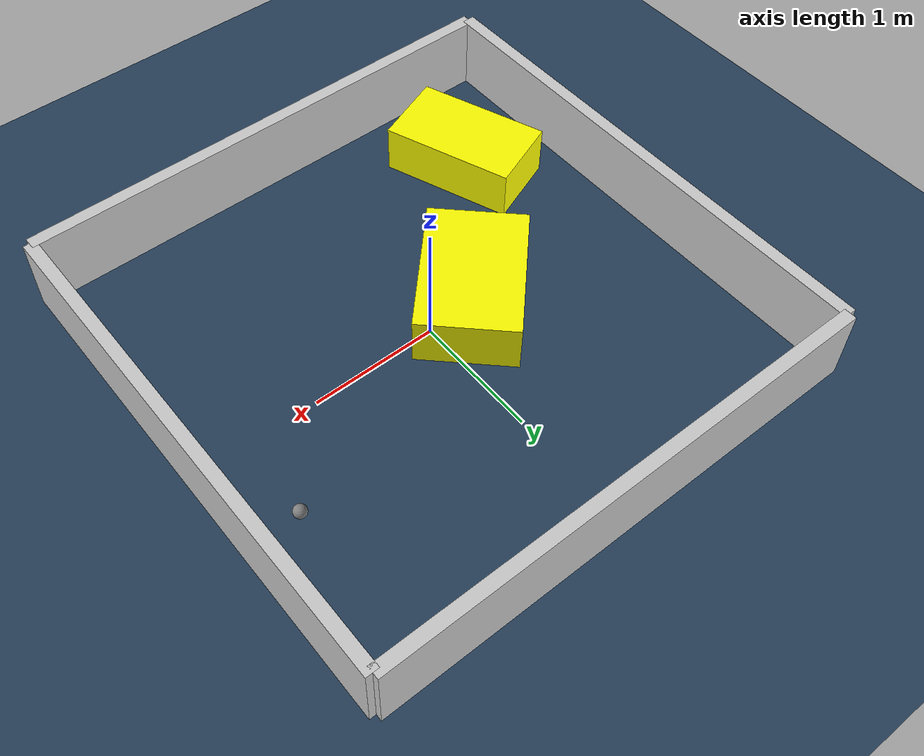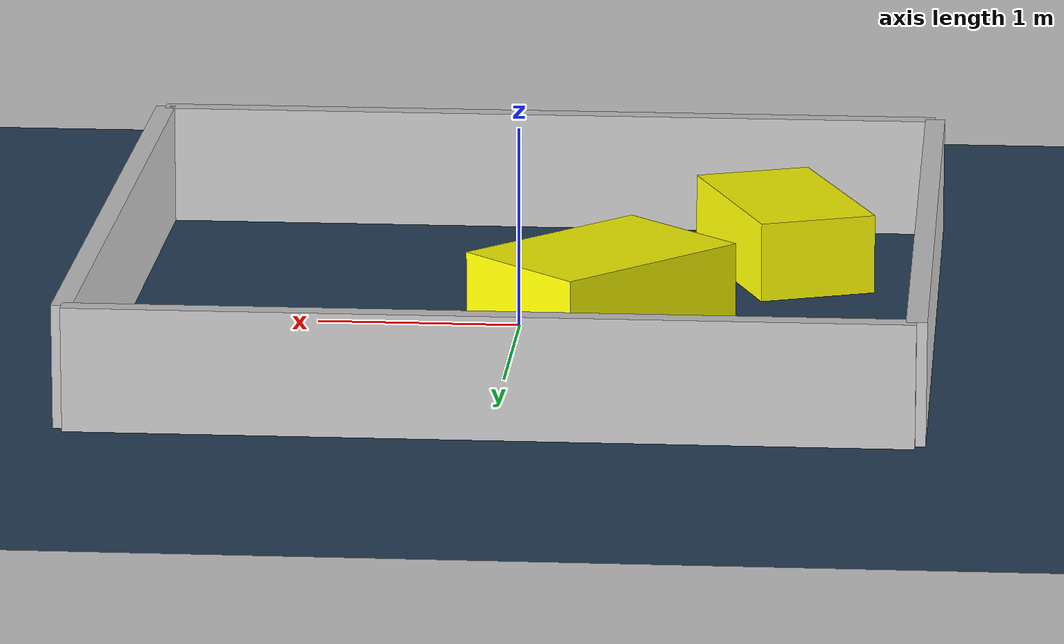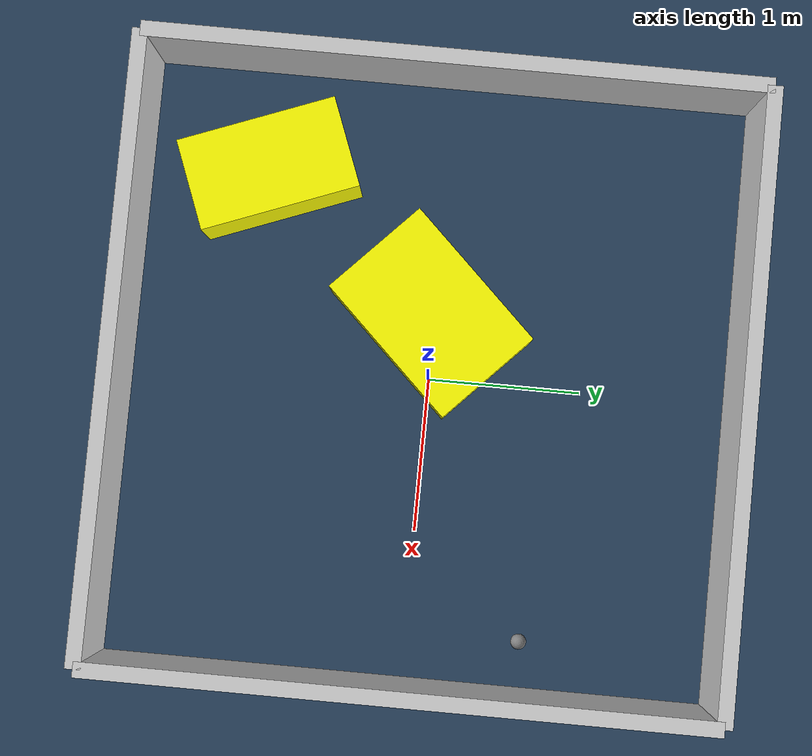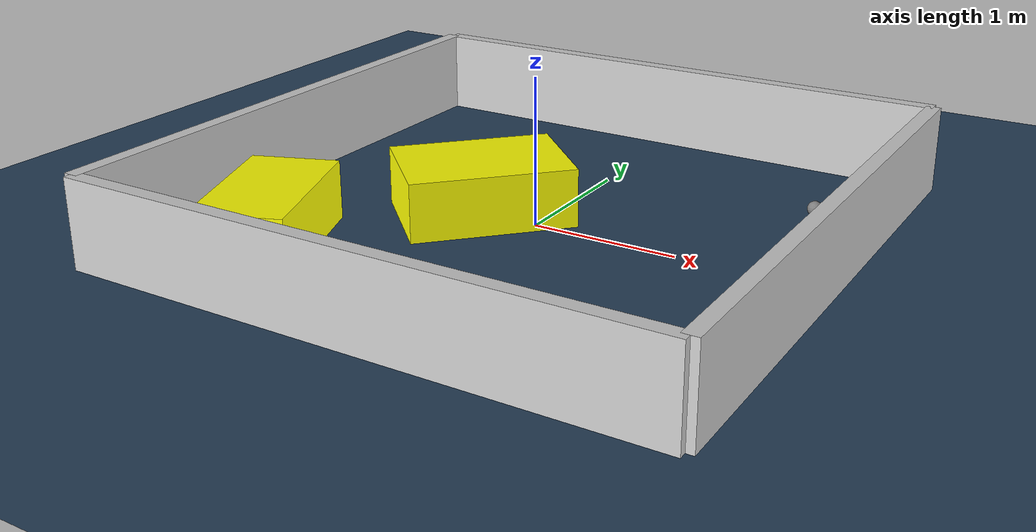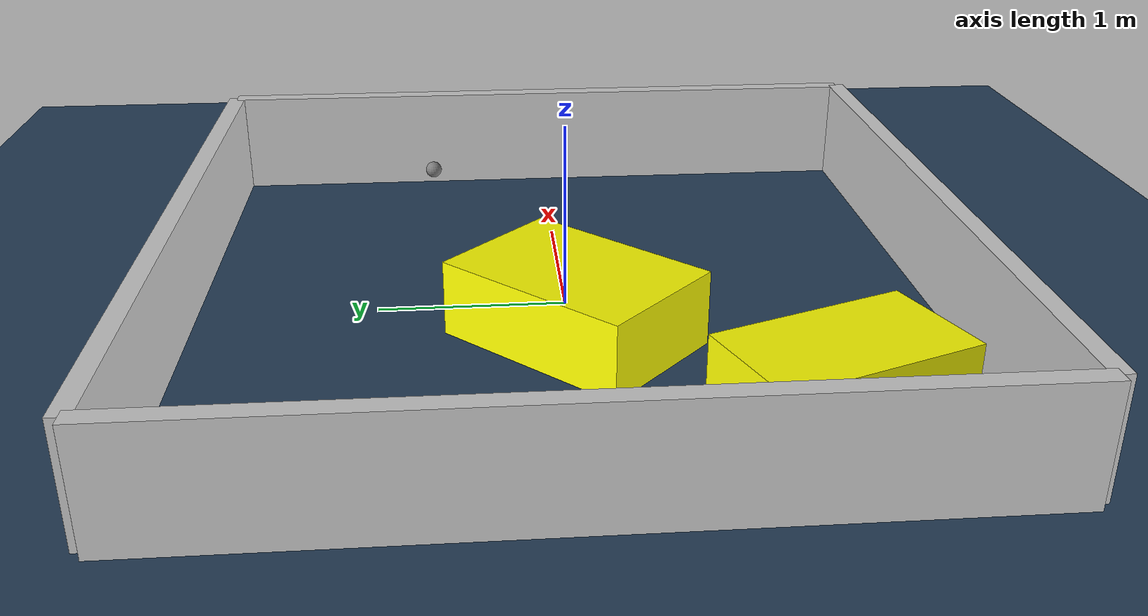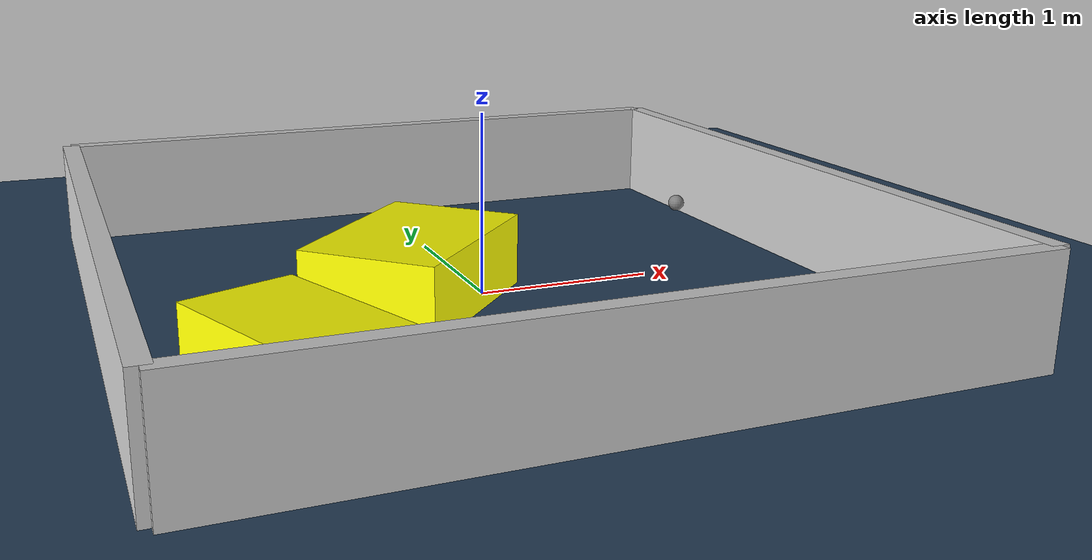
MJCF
<?xml version="1.0" ?>
<mujoco model="generated_environment">
  <option timestep="0.01" integrator="RK4" cone="elliptic"/>
  <default>
    <geom density="1"/>
  </default>
  <asset>
    <texture builtin="gradient" height="3072" rgb1="0.3 0.5 0.7" rgb2="0 0 0" type="skybox" width="512"/>
    <texture builtin="checker" height="300" mark="edge" markrgb="0.8 0.8 0.8" name="groundplane" rgb1="0.2 0.3 0.4" rgb2="0.1 0.2 0.3" type="2d" width="300"/>
    <material name="groundplane" reflectance="0.2" texrepeat="5 5" texture="groundplane" texuniform="true"/>
    <material name="robot" rgba="0.0 1.0 0.0 1"/>
  </asset>
  <worldbody>
    <light dir="0 0 -1" directional="true" pos="0 0 1.5"/>
    <geom condim="4" friction="1.0 0.005 0.001" material="groundplane" name="floor" size="0 0 0.05" type="plane"/>
    <body name="walls">
      <geom name="wall_1" condim="4" pos="-2.0 0.0 0.3" rgba="0.800000011920929 0.800000011920929 0.800000011920929 1.0" size="0.05 2.0 0.3" type="box"/>
      <geom name="wall_2" condim="4" pos="2.0 0.0 0.3" rgba="0.800000011920929 0.800000011920929 0.800000011920929 1.0" size="0.05 2.0 0.3" type="box"/>
      <geom name="wall_3" condim="4" pos="0.0 -2.0 0.3" rgba="0.800000011920929 0.800000011920929 0.800000011920929 1.0" size="2.0 0.05 0.3" type="box"/>
      <geom name="wall_4" condim="4" pos="0.0 2.0 0.3" rgba="0.800000011920929 0.800000011920929 0.800000011920929 1.0" size="2.0 0.05 0.3" type="box"/>
    </body>
    <body name="robot">
      <joint name="joint_x" type="slide" pos="0 0 0" axis="1 0 0"/>
      <joint name="joint_y" type="slide" pos="0 0 0" axis="0 1 0"/>
      <geom name="robot" type="sphere" pos="1.6309179122561521 0.7284717663622171 0.2" size="0.05" mass="5." friction="1.0 0.005 0.0001" condim="4"/>
      <site name="sensor_ball"/>
    </body>
    <body name="obstacle_1_movable">
      <geom name="obstacle_1_movable" condim="4" pos="-0.40268475511905155 -0.0197512197422951 0.2" euler="0 0 136.02057178681594" friction="1.0 0.005 0.001" rgba="1 1 0 1" size="0.38137204084806686 0.5518030740138797 0.2" type="box" mass="0.1"/>
      <joint type="free"/>
    </body>
    <body name="obstacle_2_movable">
      <geom name="obstacle_2_movable" condim="4" pos="-1.2615942192450014 -1.1435115301759864 0.2" euler="0 0 290.9501090042462" friction="1.0 0.005 0.001" rgba="1 1 0 1" size="0.5246616903377848 0.2997650198487071 0.2" type="box" mass="0.1"/>
      <joint type="free"/>
    </body>
  </worldbody>
  <actuator>
    <motor name="actuator_x" joint="joint_x" gear="1" ctrlrange="-1 1"/>
    <motor name="actuator_y" joint="joint_y" gear="1" ctrlrange="-1 1"/>
  </actuator>
</mujoco>
